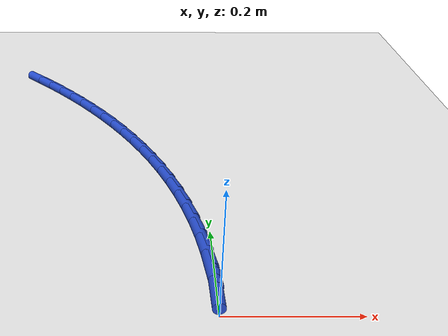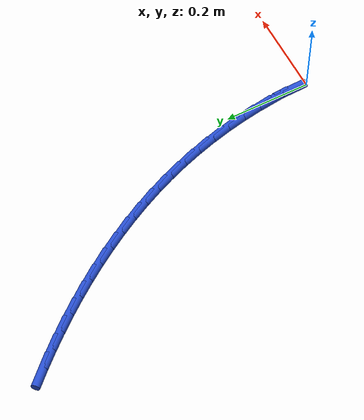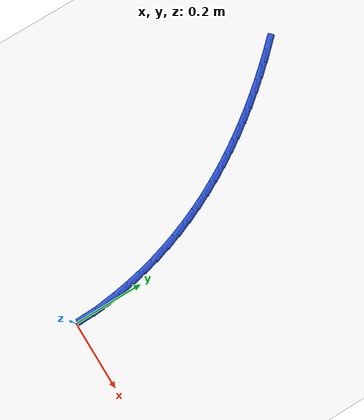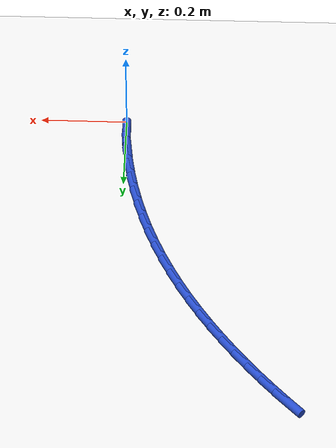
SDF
<sdf version="1.6">
 <world name="default">
  <model name="ground_plane">
   <static>1</static>
   <link name="link">
    <collision name="collision">
     <geometry><plane><normal>0 0 1</normal><size>100 100</size></plane></geometry>
     <surface><friction><ode><mu>100</mu><mu2>50</mu2></ode></friction></surface>
    </collision>
    <visual name="visual">
     <cast_shadows>0</cast_shadows>
     <geometry><plane><normal>0 0 1</normal><size>100 100</size></plane></geometry>
     <material>
      <script><uri>file://media/materials/scripts/gazebo.material</uri><name>Gazebo/WhiteGlow</name></script>
     </material>
    </visual>
   </link>
  </model>
  <model name="line">
   <link name="link_2">
    <pose>-0.00435128964356094 0.08824273699094067 0.01 0 1.57 -1.4552568356801363</pose>
    <collision name="collision">
     <geometry><cylinder><radius>0.01</radius><length>0.08</length></cylinder></geometry>
    </collision>
    <visual name="visual">
     <material>
      <script><name>Gazebo/Blue</name><uri>file://media/materials/scripts/gazebo.material</uri></script>
     </material>
     <geometry><cylinder><radius>0.01</radius><length>0.08</length></cylinder></geometry>
    </visual>
   </link>
   <link name="link_3">
    <pose>-0.009453980212633106 0.13221007992053202 0.01 0 1.57 -1.412352412987002</pose>
    <collision name="collision">
     <geometry><cylinder><radius>0.01</radius><length>0.08</length></cylinder></geometry>
    </collision>
    <visual name="visual">
     <material>
      <script><name>Gazebo/Blue</name><uri>file://media/materials/scripts/gazebo.material</uri></script>
     </material>
     <geometry><cylinder><radius>0.01</radius><length>0.08</length></cylinder></geometry>
    </visual>
   </link>
   <link name="link_4">
    <pose>-0.016443985984489005 0.17595687966684467 0.01 0 1.57 -1.3702658114433748</pose>
    <collision name="collision">
     <geometry><cylinder><radius>0.01</radius><length>0.08</length></cylinder></geometry>
    </collision>
    <visual name="visual">
     <material>
      <script><name>Gazebo/Blue</name><uri>file://media/materials/scripts/gazebo.material</uri></script>
     </material>
     <geometry><cylinder><radius>0.01</radius><length>0.08</length></cylinder></geometry>
    </visual>
   </link>
   <link name="link_5">
    <pose>-0.025273270487570585 0.21939474162535907 0.01 0 1.57 -1.3288727719784204</pose>
    <collision name="collision">
     <geometry><cylinder><radius>0.01</radius><length>0.08</length></cylinder></geometry>
    </collision>
    <visual name="visual">
     <material>
      <script><name>Gazebo/Blue</name><uri>file://media/materials/scripts/gazebo.material</uri></script>
     </material>
     <geometry><cylinder><radius>0.01</radius><length>0.08</length></cylinder></geometry>
    </visual>
   </link>
   <link name="link_6">
    <pose>-0.03589379725031978 0.2624352711915555 0.01 0 1.57 -1.2880438969504369</pose>
    <collision name="collision">
     <geometry><cylinder><radius>0.01</radius><length>0.08</length></cylinder></geometry>
    </collision>
    <visual name="visual">
     <material>
      <script><name>Gazebo/Blue</name><uri>file://media/materials/scripts/gazebo.material</uri></script>
     </material>
     <geometry><cylinder><radius>0.01</radius><length>0.08</length></cylinder></geometry>
    </visual>
   </link>
   <link name="link_7">
    <pose>-0.04825752980117855 0.30499007376091464 0.01 0 1.57 -1.247645606803307</pose>
    <collision name="collision">
     <geometry><cylinder><radius>0.01</radius><length>0.08</length></cylinder></geometry>
    </collision>
    <visual name="visual">
     <material>
      <script><name>Gazebo/Blue</name><uri>file://media/materials/scripts/gazebo.material</uri></script>
     </material>
     <geometry><cylinder><radius>0.01</radius><length>0.08</length></cylinder></geometry>
    </visual>
   </link>
   <link name="link_8">
    <pose>-0.062316431668588815 0.34697075472891664 0.01 0 1.57 -1.2075959212951473</pose>
    <collision name="collision">
     <geometry><cylinder><radius>0.01</radius><length>0.08</length></cylinder></geometry>
    </collision>
    <visual name="visual">
     <material>
      <script><name>Gazebo/Blue</name><uri>file://media/materials/scripts/gazebo.material</uri></script>
     </material>
     <geometry><cylinder><radius>0.01</radius><length>0.08</length></cylinder></geometry>
    </visual>
   </link>
   <link name="link_9">
    <pose>-0.07802146258468275 0.3882931384778241 0.01 0 1.57 -1.1684688636281626</pose>
    <collision name="collision">
     <geometry><cylinder><radius>0.01</radius><length>0.08</length></cylinder></geometry>
    </collision>
    <visual name="visual">
     <material>
      <script><name>Gazebo/Blue</name><uri>file://media/materials/scripts/gazebo.material</uri></script>
     </material>
     <geometry><cylinder><radius>0.01</radius><length>0.08</length></cylinder></geometry>
    </visual>
   </link>
   <link name="link_10">
    <pose>-0.09531147299239753 0.42892394510504833 0.01 0 1.57 -1.130735102965538</pose>
    <collision name="collision">
     <geometry><cylinder><radius>0.01</radius><length>0.08</length></cylinder></geometry>
    </collision>
    <visual name="visual">
     <material>
      <script><name>Gazebo/Blue</name><uri>file://media/materials/scripts/gazebo.material</uri></script>
     </material>
     <geometry><cylinder><radius>0.01</radius><length>0.08</length></cylinder></geometry>
    </visual>
   </link>
   <link name="link_11">
    <pose>-0.11411728667674684 0.4688636309982726 0.01 0 1.57 -1.09444106113894</pose>
    <collision name="collision">
     <geometry><cylinder><radius>0.01</radius><length>0.08</length></cylinder></geometry>
    </collision>
    <visual name="visual">
     <material>
      <script><name>Gazebo/Blue</name><uri>file://media/materials/scripts/gazebo.material</uri></script>
     </material>
     <geometry><cylinder><radius>0.01</radius><length>0.08</length></cylinder></geometry>
    </visual>
   </link>
   <link name="link_12">
    <pose>-0.1343695836832227 0.5081132566868144 0.01 0 1.57 -1.0596072428523382</pose>
    <collision name="collision">
     <geometry><cylinder><radius>0.01</radius><length>0.08</length></cylinder></geometry>
    </collision>
    <visual name="visual">
     <material>
      <script><name>Gazebo/Blue</name><uri>file://media/materials/scripts/gazebo.material</uri></script>
     </material>
     <geometry><cylinder><radius>0.01</radius><length>0.08</length></cylinder></geometry>
    </visual>
   </link>
   <link name="link_13">
    <pose>-0.1559990440573169 0.5466738826999911 0.01 0 1.57 -1.026238351442877</pose>
    <collision name="collision">
     <geometry><cylinder><radius>0.01</radius><length>0.08</length></cylinder></geometry>
    </collision>
    <visual name="visual">
     <material>
      <script><name>Gazebo/Blue</name><uri>file://media/materials/scripts/gazebo.material</uri></script>
     </material>
     <geometry><cylinder><radius>0.01</radius><length>0.08</length></cylinder></geometry>
    </visual>
   </link>
   <link name="link_14">
    <pose>-0.1789363478445213 0.5845465695671197 0.01 0 1.57 -0.9943256076428734</pose>
    <collision name="collision">
     <geometry><cylinder><radius>0.01</radius><length>0.08</length></cylinder></geometry>
    </collision>
    <visual name="visual">
     <material>
      <script><name>Gazebo/Blue</name><uri>file://media/materials/scripts/gazebo.material</uri></script>
     </material>
     <geometry><cylinder><radius>0.01</radius><length>0.08</length></cylinder></geometry>
    </visual>
   </link>
   <link name="link_15">
    <pose>-0.2031121750903279 0.6217323778175178 0.01 0 1.57 -0.9638490437568503</pose>
    <collision name="collision">
     <geometry><cylinder><radius>0.01</radius><length>0.08</length></cylinder></geometry>
    </collision>
    <visual name="visual">
     <material>
      <script><name>Gazebo/Blue</name><uri>file://media/materials/scripts/gazebo.material</uri></script>
     </material>
     <geometry><cylinder><radius>0.01</radius><length>0.08</length></cylinder></geometry>
    </visual>
   </link>
   <link name="link_16">
    <pose>-0.22845720584022855 0.6582323679805026 0.01 0 1.57 -0.9347796829185863</pose>
    <collision name="collision">
     <geometry><cylinder><radius>0.01</radius><length>0.08</length></cylinder></geometry>
    </collision>
    <visual name="visual">
     <material>
      <script><name>Gazebo/Blue</name><uri>file://media/materials/scripts/gazebo.material</uri></script>
     </material>
     <geometry><cylinder><radius>0.01</radius><length>0.08</length></cylinder></geometry>
    </visual>
   </link>
   <link name="link_17">
    <pose>-0.2549021201397152 0.6940476005853915 0.01 0 1.57 -0.9070815428317615</pose>
    <collision name="collision">
     <geometry><cylinder><radius>0.01</radius><length>0.08</length></cylinder></geometry>
    </collision>
    <visual name="visual">
     <material>
      <script><name>Gazebo/Blue</name><uri>file://media/materials/scripts/gazebo.material</uri></script>
     </material>
     <geometry><cylinder><radius>0.01</radius><length>0.08</length></cylinder></geometry>
    </visual>
   </link>
   <link name="link_18">
    <pose>-0.28237759803427964 0.7291791361615019 0.01 0 1.57 -0.8807134289384356</pose>
    <collision name="collision">
     <geometry><cylinder><radius>0.01</radius><length>0.08</length></cylinder></geometry>
    </collision>
    <visual name="visual">
     <material>
      <script><name>Gazebo/Blue</name><uri>file://media/materials/scripts/gazebo.material</uri></script>
     </material>
     <geometry><cylinder><radius>0.01</radius><length>0.08</length></cylinder></geometry>
    </visual>
   </link>
   <link name="link_19">
    <pose>-0.3108143195694138 0.7636280352381509 0.01 0 1.57 -0.8556305024046496</pose>
    <collision name="collision">
     <geometry><cylinder><radius>0.01</radius><length>0.08</length></cylinder></geometry>
    </collision>
    <visual name="visual">
     <material>
      <script><name>Gazebo/Blue</name><uri>file://media/materials/scripts/gazebo.material</uri></script>
     </material>
     <geometry><cylinder><radius>0.01</radius><length>0.08</length></cylinder></geometry>
    </visual>
   </link>
   <link name="link_20">
    <pose>-0.3401429647906097 0.7973953583446561 0.01 0 1.57 -0.8317856236187741</pose>
    <collision name="collision">
     <geometry><cylinder><radius>0.01</radius><length>0.08</length></cylinder></geometry>
    </collision>
    <visual name="visual">
     <material>
      <script><name>Gazebo/Blue</name><uri>file://media/materials/scripts/gazebo.material</uri></script>
     </material>
     <geometry><cylinder><radius>0.01</radius><length>0.08</length></cylinder></geometry>
    </visual>
   </link>
   <link name="link_21">
    <pose>-0.370294213743359 0.8304821660103344 0.01 0 1.57 -0.8091304825563828</pose>
    <collision name="collision">
     <geometry><cylinder><radius>0.01</radius><length>0.08</length></cylinder></geometry>
    </collision>
    <visual name="visual">
     <material>
      <script><name>Gazebo/Blue</name><uri>file://media/materials/scripts/gazebo.material</uri></script>
     </material>
     <geometry><cylinder><radius>0.01</radius><length>0.08</length></cylinder></geometry>
    </visual>
   </link>
   <link name="link_171">
    <pose>-0.0011948993957530563 0.04414859584694015 0.01 0 1.57 -1.5437375329166267</pose>
    <collision name="collision">
     <geometry><cylinder><radius>0.01</radius><length>0.08</length></cylinder></geometry>
    </collision>
    <visual name="visual">
     <material>
      <script><name>Gazebo/Blue</name><uri>file://media/materials/scripts/gazebo.material</uri></script>
     </material>
     <geometry><cylinder><radius>0.01</radius><length>0.08</length></cylinder></geometry>
    </visual>
   </link>
  </model>
 </world>
</sdf>
